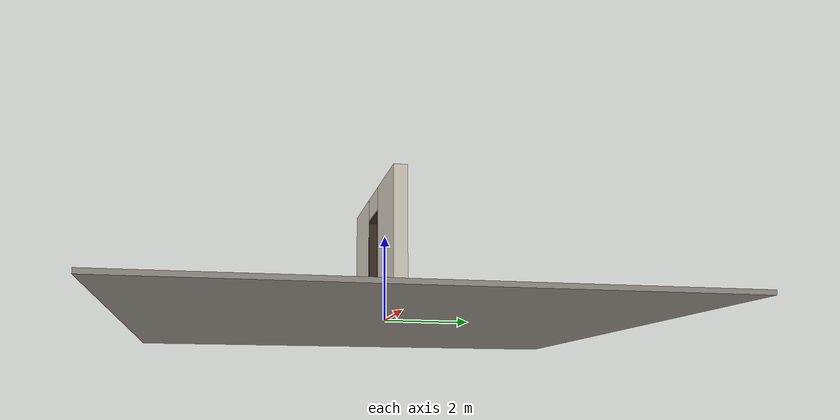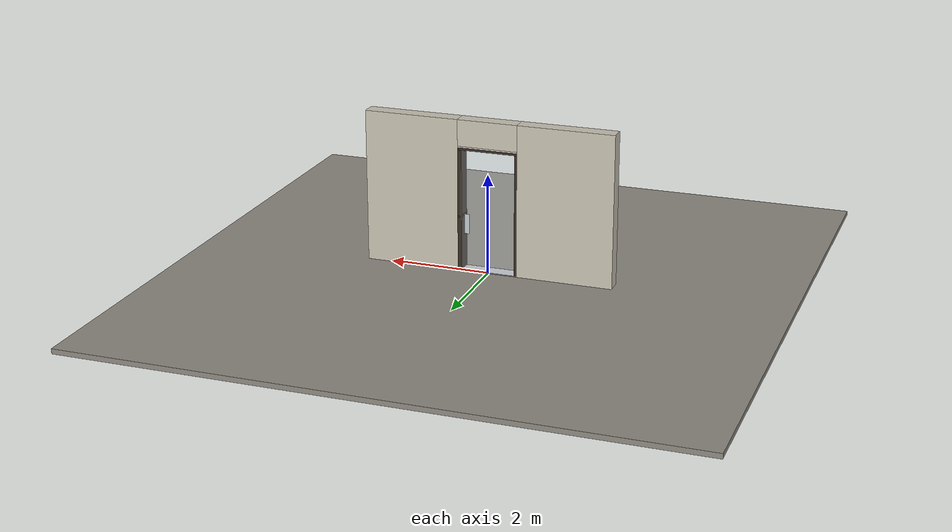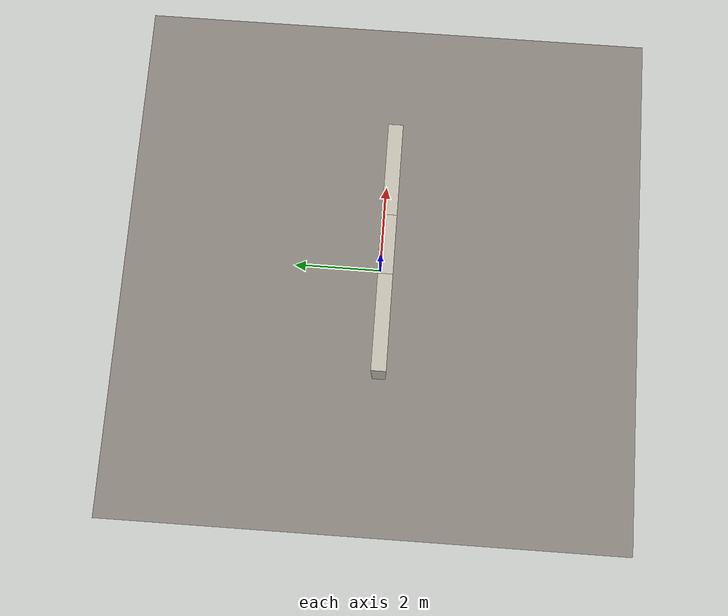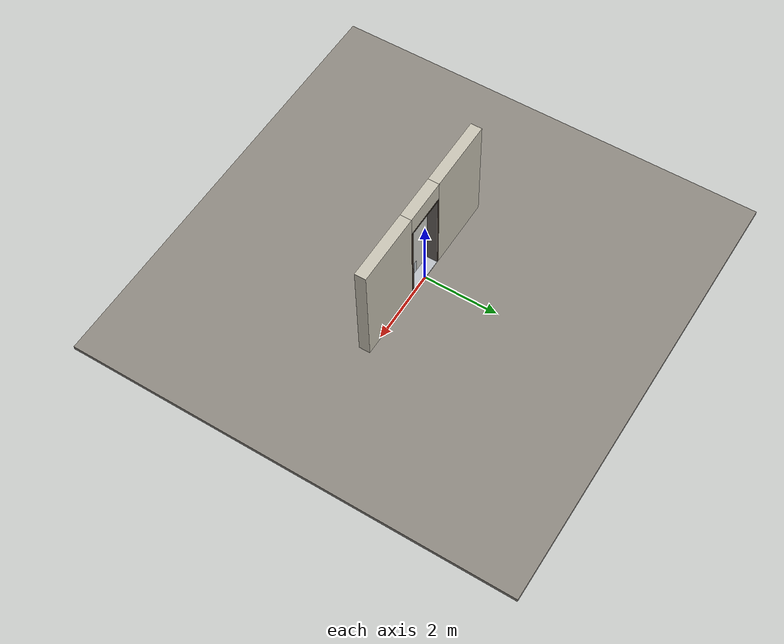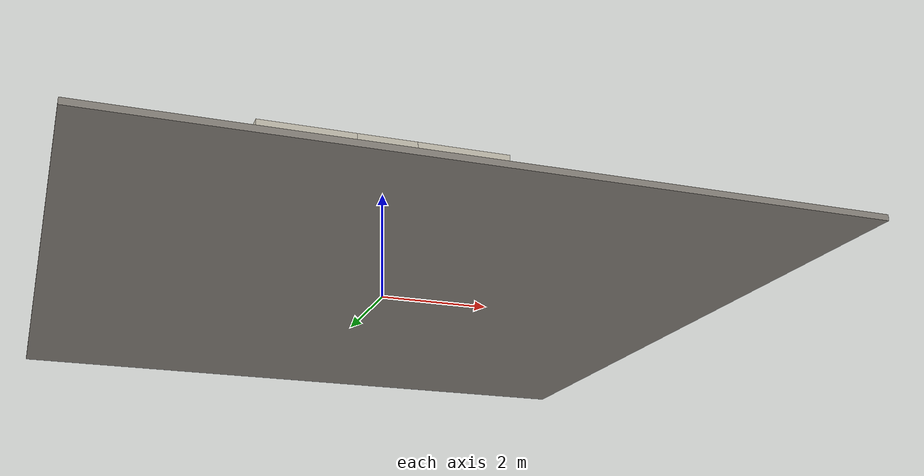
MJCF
<?xml version="1.0" ?>
<mujoco model="db0479_automatic_swing_minimal">
  <compiler angle="radian" meshdir="../../hardware" texturedir="../../textures" autolimits="true" inertiafromgeom="false"/>
  <option timestep="0.002" integrator="implicitfast" cone="elliptic" impratio="10" noslip_iterations="3">
    <flag multiccd="enable"/>
  </option>
  <size memory="16M"/>
  <default>
    <geom condim="4" solref="0.005 1" solimp="0.95 0.99 0.001"/>
    <joint solreflimit="0.005 1" solimplimit="0.95 0.99 0.001"/>
    <tendon solreflimit="0.005 1"/>
    <equality solref="0.002 1"/>
  </default>
  <visual>
    <headlight ambient="0.4 0.4 0.4" diffuse="0.7 0.7 0.7" specular="0.2 0.2 0.2"/>
    <quality shadowsize="4096"/>
    <map znear="0.01" zfar="60"/>
  </visual>
  <asset>
    <material name="mat_floor" rgba="0.55 0.53 0.5 1" specular="0.2" shininess="0.15" reflectance="0"/>
    <material name="mat_wall" rgba="0.78 0.76 0.7 1" specular="0.2" shininess="0.1" reflectance="0"/>
    <material name="mat_leaf" rgba="0.85 0.92 0.95 0.25" specular="0.2" shininess="0.95" reflectance="0.1"/>
    <material name="mat_glass_leaf" rgba="0.85 0.92 0.95 0.25" specular="0.2" shininess="0.95" reflectance="0.1"/>
    <material name="mat_patch" rgba="0.75 0.76 0.77 1" specular="0.8" shininess="0.65" reflectance="0.4"/>
    <material name="mat_hinge" rgba="0.65 0.66 0.68 1" specular="0.74" shininess="0.5" reflectance="0.36"/>
    <material name="mat_op_stainless" rgba="0.75 0.76 0.77 1" specular="0.8" shininess="0.65" reflectance="0.4"/>
    <material name="mat_deadbolt" rgba="0.85 0.66 0.3 1" specular="0.8" shininess="0.75" reflectance="0.4"/>
    <material name="mat_frame" rgba="0.22 0.17 0.13 1" specular="0.8" shininess="0.6" reflectance="0.4"/>
    <material name="mat_threshold" rgba="0.8 0.81 0.83 1" specular="0.8" shininess="0.6" reflectance="0.4"/>
    <material name="mat_closer" rgba="0.22 0.17 0.13 1" specular="0.8" shininess="0.6" reflectance="0.4"/>
    <material name="mat_exit_sign" rgba="0.85 0.1 0.1 1" specular="0.2" shininess="0.6" reflectance="0"/>
    <material name="mat_sign_bracket" rgba="0.8 0.81 0.83 1" specular="0.8" shininess="0.6" reflectance="0.4"/>
    <material name="mat_sign" rgba="0.75 0.76 0.77 1" specular="0.8" shininess="0.65" reflectance="0.4"/>
    <material name="mat_wallreader" rgba="0.05 0.05 0.05 1" specular="0.38" shininess="0.3" reflectance="0.12"/>
    <texture name="skybox" type="skybox" builtin="gradient" rgb1="0.6 0.7 0.85" rgb2="0.9 0.92 0.95" width="256" height="256"/>
  </asset>
  <worldbody>
    <light name="sun" pos="1.5 -2.5 4" dir="-0.3 0.5 -0.8" directional="true" diffuse="0.8 0.8 0.8" specular="0.3 0.3 0.3" castshadow="true"/>
    <light name="fill" pos="-1.5 2.5 3" dir="0.3 -0.5 -0.7" directional="true" diffuse="0.35 0.35 0.4" castshadow="false"/>
    <camera name="robot_view" pos="0 -3.056313 2.043887" xyaxes="1 0 0 0 0.26963 0.962964" fovy="52"/>
    <camera name="far_view" pos="0 2.789312 2.043887" xyaxes="-1 0 0 0 -0.26963 0.962964" fovy="52"/>
    <camera name="iso" pos="2.221337 -2.588663 2.511538" xyaxes="0.741536 0.670913 0 -0.242917 0.268487 0.932151" fovy="46"/>
    <camera name="detail_handle" pos="0.609 -0.9335 1.245" xyaxes="0.97561 0.219512 0 -0.070934 0.315262 0.94635" fovy="38"/>
    <geom name="floor" type="box" size="6 6 0.05" pos="0 0 -0.05" material="mat_floor" group="0" contype="1" conaffinity="1" friction="0.8 0.005 0.0001" density="2400"/>
    <geom name="wall_left" type="box" size="0.9585 0.15 1.5255" pos="-1.5415 -0.1335 1.5255" material="mat_wall" group="0" contype="1" conaffinity="1" friction="0.6 0.005 0.0001" density="800"/>
    <geom name="wall_right" type="box" size="0.9435 0.15 1.5255" pos="1.5565 -0.1335 1.5255" material="mat_wall" group="0" contype="1" conaffinity="1" friction="0.6 0.005 0.0001" density="800"/>
    <geom name="wall_header" type="box" size="0.598 0.15 0.2625" pos="0.015 -0.1335 2.7885" material="mat_wall" group="0" contype="1" conaffinity="1" friction="0.6 0.005 0.0001" density="800"/>
    <geom name="jamb_hinge" type="box" size="0.0225 0.15 1.2255" pos="-0.5605 -0.1335 1.2255" material="mat_frame" group="0" contype="1" conaffinity="1" friction="0.6 0.005 0.0001" density="300"/>
    <geom name="strike_1105_wall_n" type="box" size="0.0375 0.137 0.0155" pos="0.5755 -0.1465 1.105" material="mat_frame" group="0" contype="1" conaffinity="1" friction="0.6 0.005 0.0001" density="300"/>
    <geom name="strike_1105_wall_p" type="box" size="0.0375 0.0035 0.0155" pos="0.5755 0.013 1.105" material="mat_frame" group="0" contype="1" conaffinity="1" friction="0.6 0.005 0.0001" density="300"/>
    <geom name="strike_1105_back" type="box" size="0.0228 0.0095 0.0155" pos="0.5902 0 1.105" material="mat_frame" group="0" contype="1" conaffinity="1" friction="0.6 0.005 0.0001" density="300"/>
    <geom name="jamb_strike_0" type="box" size="0.0375 0.15 0.54475" pos="0.5755 -0.1335 0.54475" material="mat_frame" group="0" contype="1" conaffinity="1" friction="0.6 0.005 0.0001" density="300"/>
    <geom name="jamb_strike_1" type="box" size="0.0375 0.15 0.66525" pos="0.5755 -0.1335 1.78575" material="mat_frame" group="0" contype="1" conaffinity="1" friction="0.6 0.005 0.0001" density="300"/>
    <geom name="jamb_head" type="box" size="0.598 0.15 0.0225" pos="0.015 -0.1335 2.4735" material="mat_frame" group="0" contype="1" conaffinity="1" friction="0.6 0.005 0.0001" density="300"/>
    <geom name="head_stud" type="box" size="0.598 0.15 0.015" pos="0.015 -0.1335 2.511" material="mat_wall" group="0" contype="1" conaffinity="1" friction="0.6 0.005 0.0001" density="500"/>
    <geom name="threshold" type="box" size="0.583 0.15 0.0065" pos="0 -0.1335 0.0065" material="mat_threshold" group="0" contype="1" conaffinity="1" friction="0.5 0.005 0.0001" density="2700"/>
    <site name="approach_point" pos="0 -1.5 0" quat="1 0 0 0" size="0.05" rgba="0.2 0.9 0.2 0.5" group="4"/>
    <site name="goal_point" pos="0 1.5 0" quat="1 0 0 0" size="0.05" rgba="0.2 0.9 0.2 0.5" group="4"/>
    <site name="door_plane_center" pos="0 0 1.2255" quat="1 0 0 0" size="0.02" rgba="0.2 0.9 0.2 0.5" group="4"/>
    <body name="leaf" pos="-0.538 0 0">
      <inertial pos="0.571914 -0.000779 1.211803" mass="92.128198" quat="0.504857 0.506176 0.493562 -0.495279" diaginertia="9.254893812 42.476344677 51.724930699"/>
      <joint name="leaf_hinge" type="hinge" axis="0 0 1" pos="0.003 0.0165 0" limited="true" range="0 1.570796" damping="15.570702" frictionloss="1.196857" stiffness="19.0031" springref="-2.141756" armature="0.02"/>
      <geom name="leaf_glass" type="box" size="0.5335 0.0095 1.215" pos="0.5395 0 1.232" material="mat_glass_leaf" group="0" contype="1" conaffinity="1" friction="0.4 0.005 0.0001" density="1"/>
      <geom name="leaf_push_plate_n" type="box" size="0.05 0.0008 0.2" pos="0.968 -0.0103 0.965" material="mat_op_stainless" group="1" contype="0" conaffinity="0" density="7900"/>
      <site name="leaf_push_plate_push_n" pos="0.968 -0.0095 0.965" quat="1 0 0 0" size="0.012" rgba="0.2 0.9 0.2 0.5" group="4"/>
      <site name="leaf_edge_mid" pos="1.073 0 1.215" quat="1 0 0 0" size="0.02" rgba="0.2 0.9 0.2 0.5" group="4"/>
    </body>
  </worldbody>
  <actuator>
    <position name="swing_operator" joint="leaf_hinge" kp="150" kv="40" forcerange="-60 60" ctrlrange="0 1.6"/>
  </actuator>
  <sensor>
    <jointpos name="leaf_hinge_pos" joint="leaf_hinge"/>
    <jointvel name="leaf_hinge_vel" joint="leaf_hinge"/>
  </sensor>
</mujoco>
